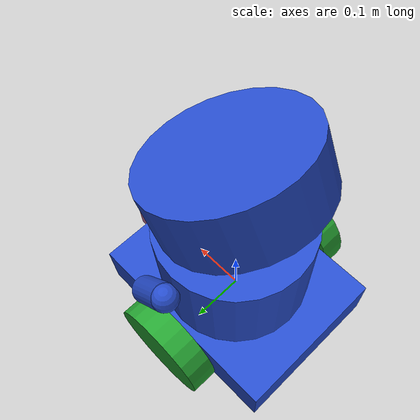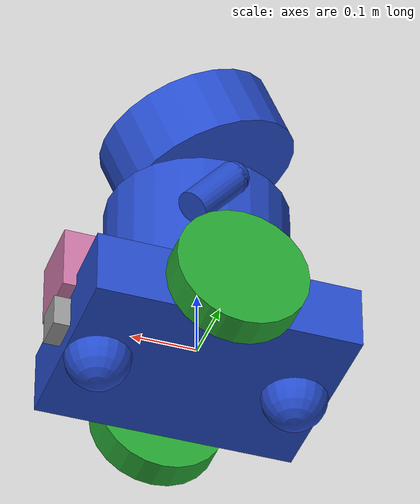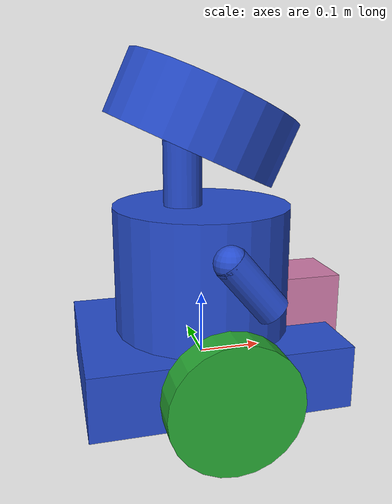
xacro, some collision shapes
<?xml version='1.0'?>

<robot name="my_robot" xmlns:xacro="http://www.ros.org/wiki/xacro">

<xacro:include filename="$(find my_robot)/urdf/my_robot.gazebo" />

  <!--Links-->

  <link name="robot_footprint"></link>

  <link name='chassis'>
    <pose>0 0 0.1 0 0 0</pose>

    <inertial>
      <mass value="15.0"/>
      <origin xyz="0.0 0 0" rpy=" 0 0 0"/>
      <inertia
          ixx="0.1" ixy="0" ixz="0"
          iyy="0.1" iyz="0"
          izz="0.1"
      />
    </inertial>

    <collision name='chassis_collision'>
      <origin xyz="0 0 0" rpy=" 0 0 0"/>
      <geometry>
        <box size=".4 .3 .1"/>
      </geometry>
    </collision>

    <visual name='chassis_visual'>
      <origin xyz="0 0 0" rpy=" 0 0 0"/>
      <geometry>
        <box size=".4 .3 .1"/>
      </geometry>
    </visual>

    <collision name='back_caster_collision'>
      <origin xyz="-0.15 0 -0.05" rpy=" 0 0 0"/>
      <geometry>
        <sphere radius="0.0499"/>
      </geometry>
    </collision>

    <visual name='back_caster_visual'>
      <origin xyz="-0.15 0 -0.05" rpy=" 0 0 0"/>
      <geometry>
        <sphere radius="0.05"/>
      </geometry>
    </visual>

    <collision name='front_caster_collision'>
      <origin xyz="0.15 0 -0.05" rpy=" 0 0 0"/>
      <geometry>
        <sphere radius="0.0499"/>
      </geometry>
    </collision>

    <visual name='front_caster_visual'>
      <origin xyz="0.15 0 -0.05" rpy=" 0 0 0"/>
      <geometry>
        <sphere radius="0.05"/>
      </geometry>
    </visual>

    <!--Upper part of the body-->
    <collision name='body_collision'>
      <origin xyz="0 0 0.15" rpy=" 0 0 0"/>
      <geometry>
        <cylinder radius="0.14" length="0.2"/>
      </geometry>
    </collision>

    <visual name='body_visual'>
      <origin xyz="0 0 0.15" rpy=" 0 0 0"/>
      <geometry>
        <cylinder radius="0.14" length="0.2"/>
      </geometry>
    </visual>

    <collision name='arm_rigth_collision'>
      <origin xyz="0 -0.16 0.2" rpy=" 0 0 0"/>
      <geometry>
        <sphere radius="0.025"/>
      </geometry>
    </collision>

    <visual name='arm_rigth_visual'>
      <origin xyz="0 -0.16 0.2" rpy=" 0 0 0"/>
      <geometry>
        <sphere radius="0.025"/>
      </geometry>
    </visual>

    <collision name='arm_R_collision'>
      <origin xyz="0.03 -0.16 0.165" rpy=" 0 -0.6981 0"/>
      <geometry>
        <cylinder radius="0.025" length="0.1"/>
      </geometry>
    </collision>

    <visual name='arm_R_visual'>
      <origin xyz="0.03 -0.16 0.165" rpy=" 0 -0.6981 0"/>
      <geometry>
        <cylinder radius="0.025" length="0.1"/>
      </geometry>
    </visual>

    <collision name='arm_left_collision'>
      <origin xyz="0 0.16 0.2" rpy=" 0 0 0"/>
      <geometry>
        <sphere radius="0.025"/>
      </geometry>
    </collision>

    <visual name='arm_left_visual'>
      <origin xyz="0 0.16 0.2" rpy=" 0 0 0"/>
      <geometry>
        <sphere radius="0.025"/>
      </geometry>
    </visual>

    <collision name='arm_L_collision'>
      <origin xyz="0.03 0.16 0.165" rpy=" 0 -0.6981 0"/>
      <geometry>
        <cylinder radius="0.025" length="0.1"/>
      </geometry>
    </collision>

    <visual name='arm_L_visual'>
      <origin xyz="0.03 0.16 0.165" rpy=" 0 -0.6981 0"/>
      <geometry>
        <cylinder radius="0.025" length="0.1"/>
      </geometry>
    </visual>

    <collision name='neck_collision'>
      <origin xyz="-0.03 0 0.3" rpy=" 0 0 0"/>
      <geometry>
        <cylinder radius="0.03" length="0.1"/>
      </geometry>
    </collision>

    <visual name='neck_visual'>
      <origin xyz="-0.03 0 0.3" rpy=" 0 0 0"/>
      <geometry>
        <cylinder radius="0.03" length="0.1"/>
      </geometry>
    </visual>

    <collision name='head_collision'>
      <origin xyz="0 0 0.38" rpy=" 0 0.4363 0"/>
      <geometry>
        <cylinder radius="0.14" length="0.1"/>
      </geometry>
    </collision>

    <visual name='head_visual'>
      <origin xyz="0 0 0.38" rpy=" 0 0.4363 0"/>
      <geometry>
        <cylinder radius="0.14" length="0.1"/>
      </geometry>
    </visual>

  </link>

  <!--Links wheels-->

  <link name="left_wheel">

    <inertial>
      <mass value="5.0"/>
      <origin xyz="0.0 0 0" rpy=" 0 1.5707 1.5707"/>
      <inertia
          ixx="0.1" ixy="0" ixz="0"
          iyy="0.1" iyz="0"
          izz="0.1"
      />
    </inertial>

    <collision name='left_wheel_collision'>
      <origin xyz="0 0 0" rpy=" 0 1.5707 1.5707"/>
      <geometry>
        <cylinder radius="0.1" length="0.05"/>
      </geometry>
    </collision>

    <visual name='left_wheel_visual'>
      <origin xyz="0 0 0" rpy=" 0 1.5707 1.5707"/>
      <geometry>
        <cylinder radius="0.1" length="0.05"/>
      </geometry>
    </visual>
  </link>

  <link name="right_wheel">

    <inertial>
      <mass value="5.0"/>
      <origin xyz="0.0 0 0" rpy=" 0 1.5707 1.5707"/>
      <inertia
          ixx="0.1" ixy="0" ixz="0"
          iyy="0.1" iyz="0"
          izz="0.1"
      />
    </inertial>

    <collision name='right_wheel_collision'>
      <origin xyz="0 0 0" rpy=" 0 1.5707 1.5707"/>
      <geometry>
        <cylinder radius="0.1" length="0.05"/>
      </geometry>
    </collision>

    <visual name='right_wheel_visual'>
      <origin xyz="0 0 0" rpy=" 0 1.5707 1.5707"/>
      <geometry>
        <cylinder radius="0.1" length="0.05"/>
      </geometry>
    </visual>
  </link>

  <!--Link camera-->

  <link name="camera">

    <inertial>
      <mass value="0.1"/>
      <origin xyz="0.0 0 0" rpy=" 0 0 0"/>
      <inertia
          ixx="1e-6" ixy="0" ixz="0"
          iyy="1e-6" iyz="0"
          izz="1e-6"
      />
    </inertial>

    <box_inertia m="0.1" x="0.05" y="0.05" z="0.05" />

    <collision name='camera_collision'>
      <origin xyz="0 0 0" rpy=" 0 0 0"/>
      <geometry>
        <box size="0.05 0.05 0.05"/>
      </geometry>
    </collision>

    <visual name='camera_visual'>
      <origin xyz="0 0 0" rpy=" 0 0 0"/>
      <geometry>
        <box size="0.05 0.05 0.05"/>
      </geometry>
    </visual>
  </link>

  <!--Link camera optical-->

  <link name="camera_link_optical">
  </link>

  <!--Link hokuyo-->

  <link name="hokuyo">

    <inertial>
      <mass value="1e-5"/>
      <origin xyz="0.0 0 0" rpy=" 0 0 0"/>
      <inertia
          ixx="1e-6" ixy="0" ixz="0"
          iyy="1e-6" iyz="0"
          izz="1e-6"
      />
    </inertial>

    <collision name='hokuyo_collision'>
      <origin xyz="0 0 0" rpy=" 0 0 0"/>
      <geometry>
        <box size="0.1 0.1 0.1"/>
      </geometry>
    </collision>

    <visual name='hokuyo_visual'>
      <origin xyz="0 0 0" rpy=" 0 0 0"/>
      <geometry>
        <mesh filename= "package://my_robot/meshes/hokuyo.dae"/>
      </geometry>
    </visual>
  </link>

  <!--Joints-->

  <joint name="robot_footprint_joint" type="fixed">
    <origin xyz="0 0 0" rpy="0 0 0" />
    <parent link="robot_footprint"/>
    <child link="chassis" />
  </joint>

  <!--Joints Wheels-->

  <joint type="continuous" name="left_wheel_hinge">
    <origin xyz="0 0.18 0" rpy="0 0 0"/>
    <child link="left_wheel"/>
    <parent link="chassis"/>
    <axis xyz="0 1 0" rpy="0 0 0"/>
    <limit effort="10000" velocity="1000"/>
    <dynamics damping="1.0" friction="1.0"/>
  </joint>

  <joint type="continuous" name="right_wheel_hinge">
    <origin xyz="0 -0.18 0" rpy="0 0 0"/>
    <child link="right_wheel"/>
    <parent link="chassis"/>
    <axis xyz="0 1 0" rpy="0 0 0"/>
    <limit effort="10000" velocity="1000"/>
    <dynamics damping="1.0" friction="1.0"/>
  </joint>

  <!--Joint Camera-->

  <joint type="fixed" name="camera_joint">
    <origin xyz="0.2 0 0" rpy="0 0 0"/>
    <child link="camera"/>
    <parent link="chassis"/>
    <axis xyz="0 1 0" rpy="0 0 0"/>
  </joint>

  <!--Joint Camera Optical-->

  <joint name="camera_optical_joint" type="fixed">
    <origin xyz="0 0 0" rpy="-1.5707 0 -1.5707"/>
    <parent link="camera"/>
    <child link="camera_link_optical"/>
  </joint>

  <!--Joint Hokuyo-->

  <joint type="fixed" name="hokuyo_joint">
    <origin xyz="0.17 0 0.08" rpy="0 0 0"/>
    <child link="hokuyo"/>
    <parent link="chassis"/>
    <axis xyz="0 1 0" rpy="0 0 0"/>
  </joint>

  <!--Materials-->

  <gazebo reference="left_wheel">
    <material>Gazebo/Green</material>
  </gazebo>

  <gazebo reference="right_wheel">
    <material>Gazebo/Green</material>
  </gazebo>

  <gazebo reference="camera">
    <material>Gazebo/Gray</material>
  </gazebo>

  <gazebo reference="chassis">
    <material>Gazebo/Blue</material>
  </gazebo>

  <gazebo reference="body">
    <material>Gazebo/Orange</material>
  </gazebo>

</robot>
